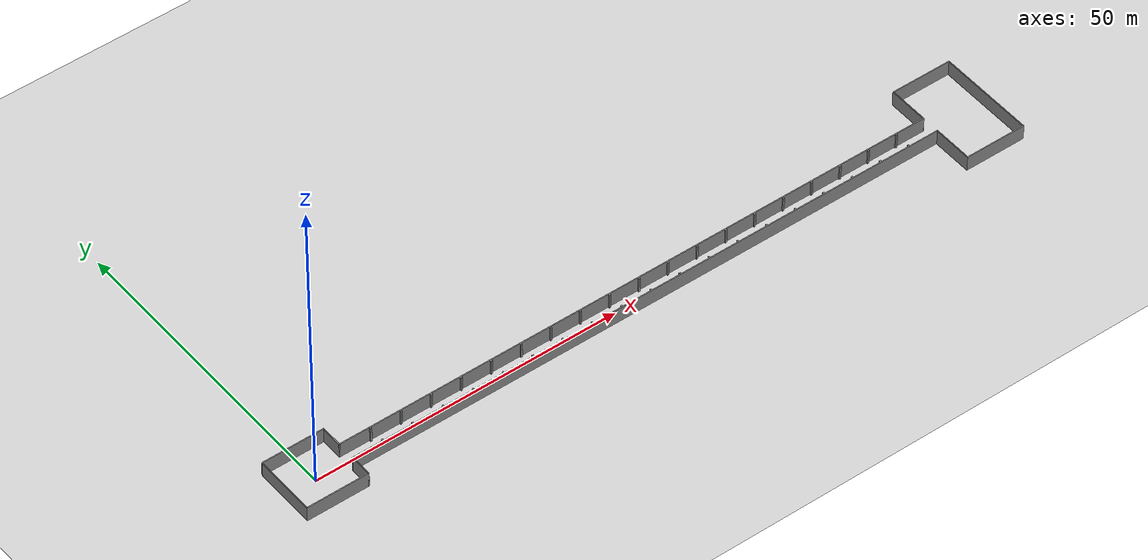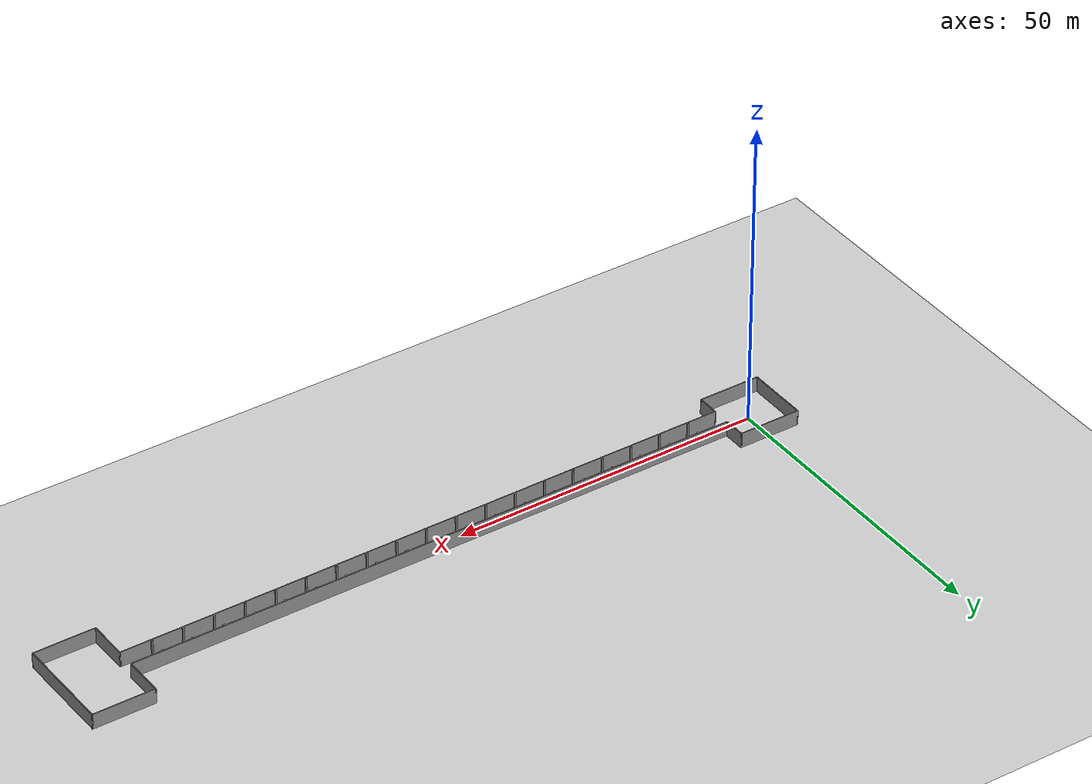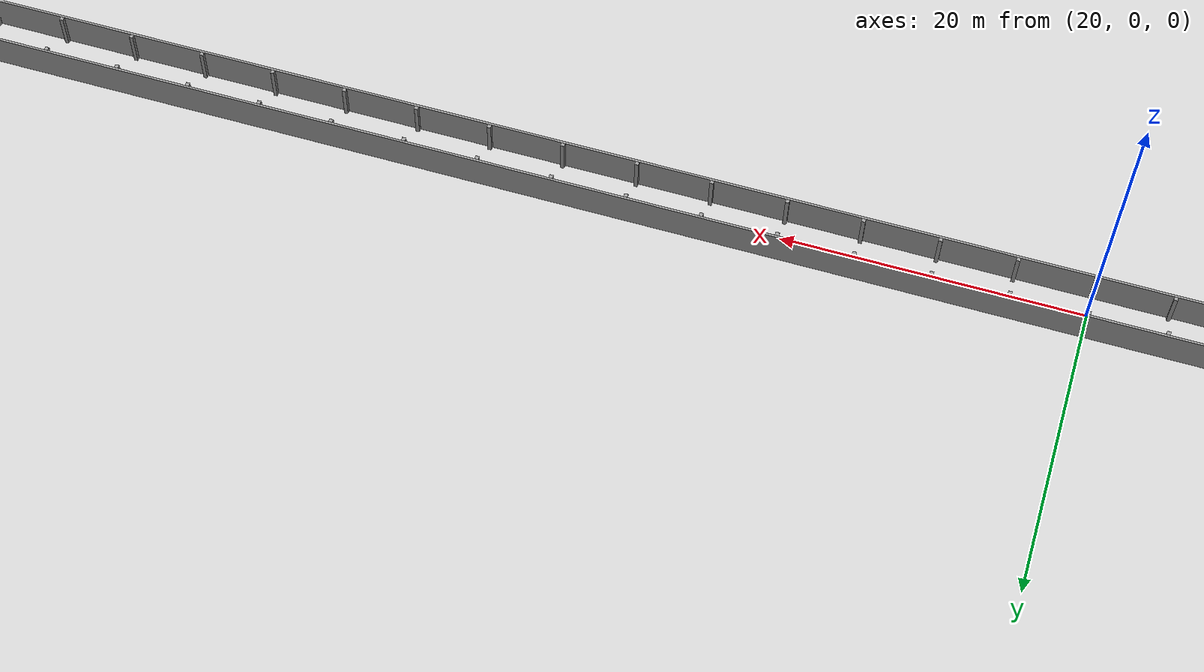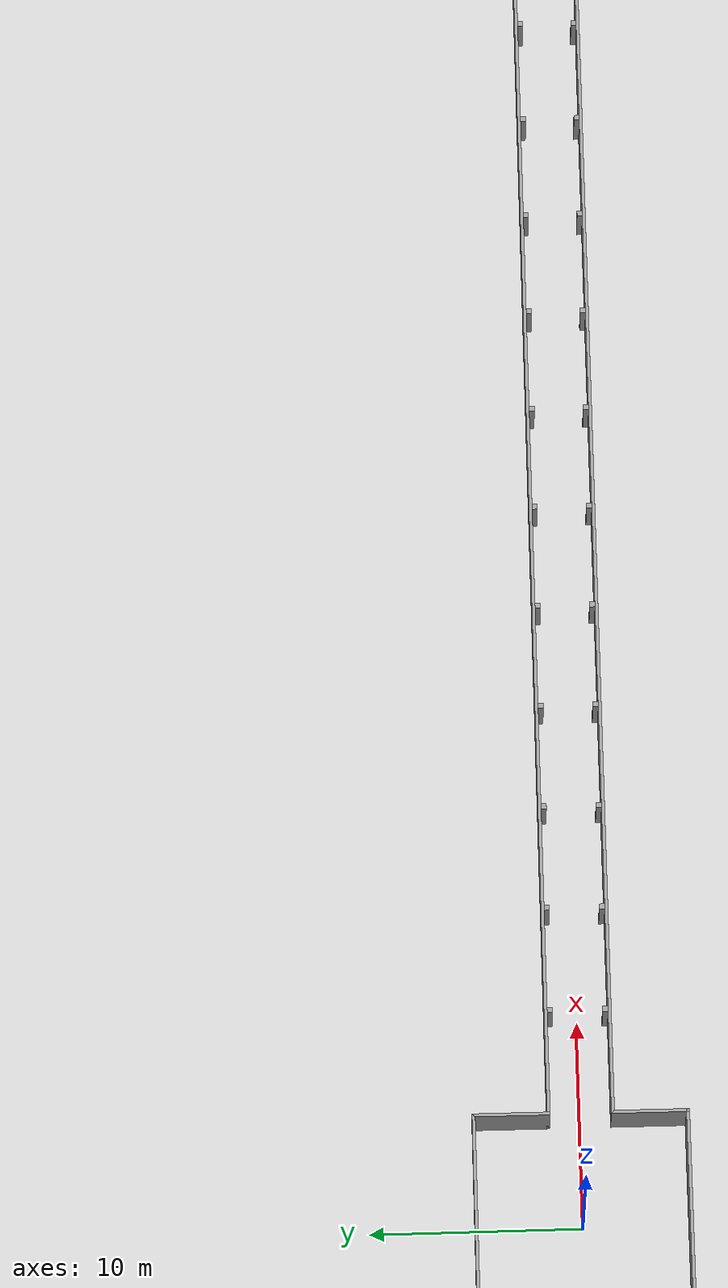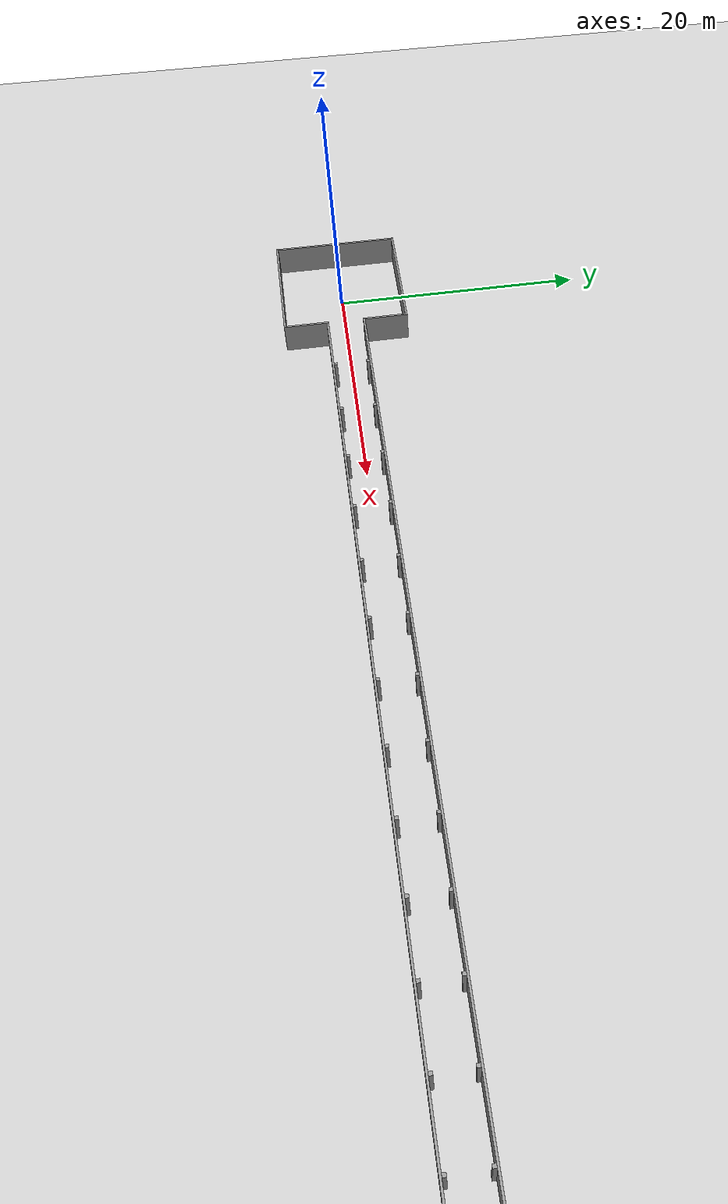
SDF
<sdf version="1.6">
 <world name="default">
  <light name="sun" type="directional">
   <pose>0 0 10 0 -0 0</pose>
   <diffuse>0.8 0.8 0.8 1</diffuse>
   <specular>0.2 0.2 0.2 1</specular>
   <attenuation>
    <range>1000</range>
    <constant>0.9</constant>
    <linear>0.01</linear>
    <quadratic>0.001</quadratic>
   </attenuation>
   <direction>-0.5 0.1 -0.9</direction>
  </light>
  <model name="ground_plane">
   <static>1</static>
   <link name="link">
    <collision name="collision">
     <geometry><plane><normal>0 0 1</normal><size>300 300</size></plane></geometry>
     <surface><friction><ode><mu>100</mu><mu2>50</mu2></ode></friction></surface>
    </collision>
    <visual name="visual">
     <cast_shadows>0</cast_shadows>
     <geometry><plane><normal>0 0 1</normal><size>300 300</size></plane></geometry>
     <material>
      <script><uri>file://media/materials/scripts/gazebo.material</uri><name>Gazebo/Grey</name></script>
     </material>
    </visual>
   </link>
  </model>
  <gravity>0 0 -9.8</gravity>
  <magnetic_field>6e-06 2.3e-05 -4.2e-05</magnetic_field>
  <atmosphere type="adiabatic"/>
  <physics name="default_physics" default="0" type="ode">
   <max_step_size>0.001</max_step_size>
   <real_time_factor>1</real_time_factor>
   <real_time_update_rate>1000</real_time_update_rate>
  </physics>
  <scene><ambient>0.4 0.4 0.4 1</ambient><background>0.7 0.7 0.7 1</background><shadows>1</shadows></scene>
  <spherical_coordinates>
   <surface_model>EARTH_WGS84</surface_model>
   <latitude_deg>0</latitude_deg>
   <longitude_deg>0</longitude_deg>
   <elevation>0</elevation>
   <heading_deg>0</heading_deg>
  </spherical_coordinates>
  <model name="DynCorridor2">
   <pose>55 0 0 0 -0 0</pose>
   <link name="Wall_0">
    <collision name="Wall_0_Collision">
     <geometry><box><size>10.15 0.15 2.5</size></box></geometry>
     <pose>0 0 1.25 0 -0 0</pose>
    </collision>
    <visual name="Wall_0_Visual">
     <pose>0 0 1.25 0 -0 0</pose>
     <geometry><box><size>10.15 0.15 2.5</size></box></geometry>
     <material>
      <script><uri>file://media/materials/scripts/gazebo.material</uri><name>Gazebo/Grey</name></script>
      <ambient>1 1 1 1</ambient>
     </material>
     <meta><layer>0</layer></meta>
    </visual>
    <pose>-55 5 0 0 -0 0</pose>
   </link>
   <link name="Wall_1">
    <collision name="Wall_1_Collision">
     <geometry><box><size>3.65 0.15 2.5</size></box></geometry>
     <pose>0 0 1.25 0 -0 0</pose>
    </collision>
    <visual name="Wall_1_Visual">
     <pose>0 0 1.25 0 -0 0</pose>
     <geometry><box><size>3.65 0.15 2.5</size></box></geometry>
     <material>
      <script><uri>file://media/materials/scripts/gazebo.material</uri><name>Gazebo/Grey</name></script>
      <ambient>1 1 1 1</ambient>
     </material>
     <meta><layer>0</layer></meta>
    </visual>
    <pose>-50 3.25 0 0 0 -1.5708</pose>
   </link>
   <link name="Wall_11">
    <collision name="Wall_11_Collision">
     <geometry><box><size>0.15 0.15 2.5</size></box></geometry>
     <pose>0 0 1.25 0 -0 0</pose>
    </collision>
    <visual name="Wall_11_Visual">
     <pose>0 0 1.25 0 -0 0</pose>
     <geometry><box><size>0.15 0.15 2.5</size></box></geometry>
     <material>
      <script><uri>file://media/materials/scripts/gazebo.material</uri><name>Gazebo/Grey</name></script>
      <ambient>1 1 1 1</ambient>
     </material>
     <meta><layer>0</layer></meta>
    </visual>
    <pose>-50 -1.5 0 0 -0 0</pose>
   </link>
   <link name="Wall_13">
    <collision name="Wall_13_Collision">
     <geometry><box><size>100.15 0.15 2.5</size></box></geometry>
     <pose>0 0 1.25 0 -0 0</pose>
    </collision>
    <visual name="Wall_13_Visual">
     <pose>0 0 1.25 0 -0 0</pose>
     <geometry><box><size>100.15 0.15 2.5</size></box></geometry>
     <material>
      <script><uri>file://media/materials/scripts/gazebo.material</uri><name>Gazebo/Grey</name></script>
      <ambient>1 1 1 1</ambient>
     </material>
     <meta><layer>0</layer></meta>
    </visual>
    <pose>-2e-06 -1.5 0 0 -0 0</pose>
   </link>
   <link name="Wall_18">
    <collision name="Wall_18_Collision">
     <geometry><box><size>6.65 0.15 2.5</size></box></geometry>
     <pose>0 0 1.25 0 -0 0</pose>
    </collision>
    <visual name="Wall_18_Visual">
     <pose>0 0 1.25 0 -0 0</pose>
     <geometry><box><size>6.65 0.15 2.5</size></box></geometry>
     <material>
      <script><uri>file://media/materials/scripts/gazebo.material</uri><name>Gazebo/Grey</name></script>
      <ambient>1 1 1 1</ambient>
     </material>
     <meta><layer>0</layer></meta>
    </visual>
    <pose>50 4.75 0 0 -0 1.5708</pose>
   </link>
   <link name="Wall_20">
    <collision name="Wall_20_Collision">
     <geometry><box><size>6.65 0.15 2.5</size></box></geometry>
     <pose>0 0 1.25 0 -0 0</pose>
    </collision>
    <visual name="Wall_20_Visual">
     <pose>0 0 1.25 0 -0 0</pose>
     <geometry><box><size>6.65 0.15 2.5</size></box></geometry>
     <material>
      <script><uri>file://media/materials/scripts/gazebo.material</uri><name>Gazebo/Grey</name></script>
      <ambient>1 1 1 1</ambient>
     </material>
     <meta><layer>0</layer></meta>
    </visual>
    <pose>50 -4.75 0 0 0 -1.5708</pose>
   </link>
   <link name="Wall_22">
    <collision name="Wall_22_Collision">
     <geometry><box><size>10.15 0.15 2.5</size></box></geometry>
     <pose>0 0 1.25 0 -0 0</pose>
    </collision>
    <visual name="Wall_22_Visual">
     <pose>0 0 1.25 0 -0 0</pose>
     <geometry><box><size>10.15 0.15 2.5</size></box></geometry>
     <material>
      <script><uri>file://media/materials/scripts/gazebo.material</uri><name>Gazebo/Grey</name></script>
      <ambient>1 1 1 1</ambient>
     </material>
     <meta><layer>0</layer></meta>
    </visual>
    <pose>55 8 0 0 -0 0</pose>
   </link>
   <link name="Wall_24">
    <collision name="Wall_24_Collision">
     <geometry><box><size>10.15 0.15 2.5</size></box></geometry>
     <pose>0 0 1.25 0 -0 0</pose>
    </collision>
    <visual name="Wall_24_Visual">
     <pose>0 0 1.25 0 -0 0</pose>
     <geometry><box><size>10.15 0.15 2.5</size></box></geometry>
     <material>
      <script><uri>file://media/materials/scripts/gazebo.material</uri><name>Gazebo/Grey</name></script>
      <ambient>1 1 1 1</ambient>
     </material>
     <meta><layer>0</layer></meta>
    </visual>
    <pose>55 -8 0 0 -0 0</pose>
   </link>
   <link name="Wall_26">
    <collision name="Wall_26_Collision">
     <geometry><box><size>16.15 0.15 2.5</size></box></geometry>
     <pose>0 0 1.25 0 -0 0</pose>
    </collision>
    <visual name="Wall_26_Visual">
     <pose>0 0 1.25 0 -0 0</pose>
     <geometry><box><size>16.15 0.15 2.5</size></box></geometry>
     <material>
      <script><uri>file://media/materials/scripts/gazebo.material</uri><name>Gazebo/Grey</name></script>
      <ambient>1 1 1 1</ambient>
     </material>
     <meta><layer>0</layer></meta>
    </visual>
    <pose>60 0 0 0 -0 1.5708</pose>
   </link>
   <link name="Wall_3">
    <collision name="Wall_3_Collision">
     <geometry><box><size>10.15 0.15 2.5</size></box></geometry>
     <pose>0 0 1.25 0 -0 0</pose>
    </collision>
    <visual name="Wall_3_Visual">
     <pose>0 0 1.25 0 -0 0</pose>
     <geometry><box><size>10.15 0.15 2.5</size></box></geometry>
     <material>
      <script><uri>file://media/materials/scripts/gazebo.material</uri><name>Gazebo/Grey</name></script>
      <ambient>1 1 1 1</ambient>
     </material>
     <meta><layer>0</layer></meta>
    </visual>
    <pose>-60 0 0 0 0 -1.5708</pose>
   </link>
   <link name="Wall_4">
    <collision name="Wall_4_Collision">
     <geometry><box><size>10.15 0.15 2.5</size></box></geometry>
     <pose>0 0 1.25 0 -0 0</pose>
    </collision>
    <visual name="Wall_4_Visual">
     <pose>0 0 1.25 0 -0 0</pose>
     <geometry><box><size>10.15 0.15 2.5</size></box></geometry>
     <material>
      <script><uri>file://media/materials/scripts/gazebo.material</uri><name>Gazebo/Grey</name></script>
      <ambient>1 1 1 1</ambient>
     </material>
     <meta><layer>0</layer></meta>
    </visual>
    <pose>-55 -5 0 0 -0 0</pose>
   </link>
   <link name="Wall_7">
    <collision name="Wall_7_Collision">
     <geometry><box><size>3.65 0.15 2.5</size></box></geometry>
     <pose>0 0 1.25 0 -0 0</pose>
    </collision>
    <visual name="Wall_7_Visual">
     <pose>0 0 1.25 0 -0 0</pose>
     <geometry><box><size>3.65 0.15 2.5</size></box></geometry>
     <material>
      <script><uri>file://media/materials/scripts/gazebo.material</uri><name>Gazebo/Grey</name></script>
      <ambient>1 1 1 1</ambient>
     </material>
     <meta><layer>0</layer></meta>
    </visual>
    <pose>-50 -3.25 0 0 -0 1.5708</pose>
   </link>
   <link name="Wall_9">
    <collision name="Wall_9_Collision">
     <geometry><box><size>100.15 0.15 2.5</size></box></geometry>
     <pose>0 0 1.25 0 -0 0</pose>
    </collision>
    <visual name="Wall_9_Visual">
     <pose>0 0 1.25 0 -0 0</pose>
     <geometry><box><size>100.15 0.15 2.5</size></box></geometry>
     <material>
      <script><uri>file://media/materials/scripts/gazebo.material</uri><name>Gazebo/Grey</name></script>
      <ambient>1 1 1 1</ambient>
     </material>
     <meta><layer>0</layer></meta>
    </visual>
    <pose>-2e-06 1.5 0 0 -0 0</pose>
   </link>
   <link name="Wall_50l">
    <collision name="Wall_50_Collision">
     <geometry><box><size>0.25 0.25 2.5</size></box></geometry>
     <pose>0 0 1.25 0 -0 0</pose>
    </collision>
    <visual name="Wall_50_Visual">
     <pose>0 0 1.25 0 -0 0</pose>
     <geometry><box><size>0.25 0.25 2.5</size></box></geometry>
     <material>
      <script><uri>file://media/materials/scripts/gazebo.material</uri><name>Gazebo/Grey</name></script>
      <ambient>1 1 1 1</ambient>
     </material>
     <meta><layer>0</layer></meta>
    </visual>
    <pose>0 1.3 0 0 -0 0</pose>
   </link>
   <link name="Wall_50r">
    <collision name="Wall_50_Collision">
     <geometry><box><size>0.25 0.25 2.5</size></box></geometry>
     <pose>0 0 1.25 0 -0 0</pose>
    </collision>
    <visual name="Wall_50_Visual">
     <pose>0 0 1.25 0 -0 0</pose>
     <geometry><box><size>0.25 0.25 2.5</size></box></geometry>
     <material>
      <script><uri>file://media/materials/scripts/gazebo.material</uri><name>Gazebo/Grey</name></script>
      <ambient>1 1 1 1</ambient>
     </material>
     <meta><layer>0</layer></meta>
    </visual>
    <pose>0 -1.3 0 0 -0 0</pose>
   </link>
   <link name="Wall_51l">
    <collision name="Wall_51_Collision">
     <geometry><box><size>0.25 0.25 2.5</size></box></geometry>
     <pose>0 0 1.25 0 -0 0</pose>
    </collision>
    <visual name="Wall_51_Visual">
     <pose>0 0 1.25 0 -0 0</pose>
     <geometry><box><size>0.25 0.25 2.5</size></box></geometry>
     <material>
      <script><uri>file://media/materials/scripts/gazebo.material</uri><name>Gazebo/Grey</name></script>
      <ambient>1 1 1 1</ambient>
     </material>
     <meta><layer>0</layer></meta>
    </visual>
    <pose>5 1.3 0 0 -0 0</pose>
   </link>
   <link name="Wall_51r">
    <collision name="Wall_51_Collision">
     <geometry><box><size>0.25 0.25 2.5</size></box></geometry>
     <pose>0 0 1.25 0 -0 0</pose>
    </collision>
    <visual name="Wall_51_Visual">
     <pose>0 0 1.25 0 -0 0</pose>
     <geometry><box><size>0.25 0.25 2.5</size></box></geometry>
     <material>
      <script><uri>file://media/materials/scripts/gazebo.material</uri><name>Gazebo/Grey</name></script>
      <ambient>1 1 1 1</ambient>
     </material>
     <meta><layer>0</layer></meta>
    </visual>
    <pose>5 -1.3 0 0 -0 0</pose>
   </link>
   <link name="Wall_52l">
    <collision name="Wall_52_Collision">
     <geometry><box><size>0.25 0.25 2.5</size></box></geometry>
     <pose>0 0 1.25 0 -0 0</pose>
    </collision>
    <visual name="Wall_52_Visual">
     <pose>0 0 1.25 0 -0 0</pose>
     <geometry><box><size>0.25 0.25 2.5</size></box></geometry>
     <material>
      <script><uri>file://media/materials/scripts/gazebo.material</uri><name>Gazebo/Grey</name></script>
      <ambient>1 1 1 1</ambient>
     </material>
     <meta><layer>0</layer></meta>
    </visual>
    <pose>10 1.3 0 0 -0 0</pose>
   </link>
   <link name="Wall_52r">
    <collision name="Wall_52_Collision">
     <geometry><box><size>0.25 0.25 2.5</size></box></geometry>
     <pose>0 0 1.25 0 -0 0</pose>
    </collision>
    <visual name="Wall_52_Visual">
     <pose>0 0 1.25 0 -0 0</pose>
     <geometry><box><size>0.25 0.25 2.5</size></box></geometry>
     <material>
      <script><uri>file://media/materials/scripts/gazebo.material</uri><name>Gazebo/Grey</name></script>
      <ambient>1 1 1 1</ambient>
     </material>
     <meta><layer>0</layer></meta>
    </visual>
    <pose>10 -1.3 0 0 -0 0</pose>
   </link>
   <link name="Wall_53l">
    <collision name="Wall_53_Collision">
     <geometry><box><size>0.25 0.25 2.5</size></box></geometry>
     <pose>0 0 1.25 0 -0 0</pose>
    </collision>
    <visual name="Wall_53_Visual">
     <pose>0 0 1.25 0 -0 0</pose>
     <geometry><box><size>0.25 0.25 2.5</size></box></geometry>
     <material>
      <script><uri>file://media/materials/scripts/gazebo.material</uri><name>Gazebo/Grey</name></script>
      <ambient>1 1 1 1</ambient>
     </material>
     <meta><layer>0</layer></meta>
    </visual>
    <pose>15 1.3 0 0 -0 0</pose>
   </link>
   <link name="Wall_53r">
    <collision name="Wall_53_Collision">
     <geometry><box><size>0.25 0.25 2.5</size></box></geometry>
     <pose>0 0 1.25 0 -0 0</pose>
    </collision>
    <visual name="Wall_53_Visual">
     <pose>0 0 1.25 0 -0 0</pose>
     <geometry><box><size>0.25 0.25 2.5</size></box></geometry>
     <material>
      <script><uri>file://media/materials/scripts/gazebo.material</uri><name>Gazebo/Grey</name></script>
      <ambient>1 1 1 1</ambient>
     </material>
     <meta><layer>0</layer></meta>
    </visual>
    <pose>15 -1.3 0 0 -0 0</pose>
   </link>
   <link name="Wall_54l">
    <collision name="Wall_54_Collision">
     <geometry><box><size>0.25 0.25 2.5</size></box></geometry>
     <pose>0 0 1.25 0 -0 0</pose>
    </collision>
    <visual name="Wall_54_Visual">
     <pose>0 0 1.25 0 -0 0</pose>
     <geometry><box><size>0.25 0.25 2.5</size></box></geometry>
     <material>
      <script><uri>file://media/materials/scripts/gazebo.material</uri><name>Gazebo/Grey</name></script>
      <ambient>1 1 1 1</ambient>
     </material>
     <meta><layer>0</layer></meta>
    </visual>
    <pose>20 1.3 0 0 -0 0</pose>
   </link>
   <link name="Wall_54r">
    <collision name="Wall_54_Collision">
     <geometry><box><size>0.25 0.25 2.5</size></box></geometry>
     <pose>0 0 1.25 0 -0 0</pose>
    </collision>
    <visual name="Wall_54_Visual">
     <pose>0 0 1.25 0 -0 0</pose>
     <geometry><box><size>0.25 0.25 2.5</size></box></geometry>
     <material>
      <script><uri>file://media/materials/scripts/gazebo.material</uri><name>Gazebo/Grey</name></script>
      <ambient>1 1 1 1</ambient>
     </material>
     <meta><layer>0</layer></meta>
    </visual>
    <pose>20 -1.3 0 0 -0 0</pose>
   </link>
   <link name="Wall_55l">
    <collision name="Wall_55_Collision">
     <geometry><box><size>0.25 0.25 2.5</size></box></geometry>
     <pose>0 0 1.25 0 -0 0</pose>
    </collision>
    <visual name="Wall_55_Visual">
     <pose>0 0 1.25 0 -0 0</pose>
     <geometry><box><size>0.25 0.25 2.5</size></box></geometry>
     <material>
      <script><uri>file://media/materials/scripts/gazebo.material</uri><name>Gazebo/Grey</name></script>
      <ambient>1 1 1 1</ambient>
     </material>
     <meta><layer>0</layer></meta>
    </visual>
    <pose>25 1.3 0 0 -0 0</pose>
   </link>
   <link name="Wall_55r">
    <collision name="Wall_55_Collision">
     <geometry><box><size>0.25 0.25 2.5</size></box></geometry>
     <pose>0 0 1.25 0 -0 0</pose>
    </collision>
    <visual name="Wall_55_Visual">
     <pose>0 0 1.25 0 -0 0</pose>
     <geometry><box><size>0.25 0.25 2.5</size></box></geometry>
     <material>
      <script><uri>file://media/materials/scripts/gazebo.material</uri><name>Gazebo/Grey</name></script>
      <ambient>1 1 1 1</ambient>
     </material>
     <meta><layer>0</layer></meta>
    </visual>
    <pose>25 -1.3 0 0 -0 0</pose>
   </link>
   <link name="Wall_56l">
    <collision name="Wall_56_Collision">
     <geometry><box><size>0.25 0.25 2.5</size></box></geometry>
     <pose>0 0 1.25 0 -0 0</pose>
    </collision>
    <visual name="Wall_56_Visual">
     <pose>0 0 1.25 0 -0 0</pose>
     <geometry><box><size>0.25 0.25 2.5</size></box></geometry>
     <material>
      <script><uri>file://media/materials/scripts/gazebo.material</uri><name>Gazebo/Grey</name></script>
      <ambient>1 1 1 1</ambient>
     </material>
     <meta><layer>0</layer></meta>
    </visual>
    <pose>30 1.3 0 0 -0 0</pose>
   </link>
   <link name="Wall_56r">
    <collision name="Wall_56_Collision">
     <geometry><box><size>0.25 0.25 2.5</size></box></geometry>
     <pose>0 0 1.25 0 -0 0</pose>
    </collision>
    <visual name="Wall_56_Visual">
     <pose>0 0 1.25 0 -0 0</pose>
     <geometry><box><size>0.25 0.25 2.5</size></box></geometry>
     <material>
      <script><uri>file://media/materials/scripts/gazebo.material</uri><name>Gazebo/Grey</name></script>
      <ambient>1 1 1 1</ambient>
     </material>
     <meta><layer>0</layer></meta>
    </visual>
    <pose>30 -1.3 0 0 -0 0</pose>
   </link>
   <link name="Wall_57l">
    <collision name="Wall_57_Collision">
     <geometry><box><size>0.25 0.25 2.5</size></box></geometry>
     <pose>0 0 1.25 0 -0 0</pose>
    </collision>
    <visual name="Wall_57_Visual">
     <pose>0 0 1.25 0 -0 0</pose>
     <geometry><box><size>0.25 0.25 2.5</size></box></geometry>
     <material>
      <script><uri>file://media/materials/scripts/gazebo.material</uri><name>Gazebo/Grey</name></script>
      <ambient>1 1 1 1</ambient>
     </material>
     <meta><layer>0</layer></meta>
    </visual>
    <pose>35 1.3 0 0 -0 0</pose>
   </link>
   <link name="Wall_57r">
    <collision name="Wall_57_Collision">
     <geometry><box><size>0.25 0.25 2.5</size></box></geometry>
     <pose>0 0 1.25 0 -0 0</pose>
    </collision>
    <visual name="Wall_57_Visual">
     <pose>0 0 1.25 0 -0 0</pose>
     <geometry><box><size>0.25 0.25 2.5</size></box></geometry>
     <material>
      <script><uri>file://media/materials/scripts/gazebo.material</uri><name>Gazebo/Grey</name></script>
      <ambient>1 1 1 1</ambient>
     </material>
     <meta><layer>0</layer></meta>
    </visual>
    <pose>35 -1.3 0 0 -0 0</pose>
   </link>
   <link name="Wall_58l">
    <collision name="Wall_58_Collision">
     <geometry><box><size>0.25 0.25 2.5</size></box></geometry>
     <pose>0 0 1.25 0 -0 0</pose>
    </collision>
    <visual name="Wall_58_Visual">
     <pose>0 0 1.25 0 -0 0</pose>
     <geometry><box><size>0.25 0.25 2.5</size></box></geometry>
     <material>
      <script><uri>file://media/materials/scripts/gazebo.material</uri><name>Gazebo/Grey</name></script>
      <ambient>1 1 1 1</ambient>
     </material>
     <meta><layer>0</layer></meta>
    </visual>
    <pose>40 1.3 0 0 -0 0</pose>
   </link>
   <link name="Wall_58r">
    <collision name="Wall_58_Collision">
     <geometry><box><size>0.25 0.25 2.5</size></box></geometry>
     <pose>0 0 1.25 0 -0 0</pose>
    </collision>
    <visual name="Wall_58_Visual">
     <pose>0 0 1.25 0 -0 0</pose>
     <geometry><box><size>0.25 0.25 2.5</size></box></geometry>
     <material>
      <script><uri>file://media/materials/scripts/gazebo.material</uri><name>Gazebo/Grey</name></script>
      <ambient>1 1 1 1</ambient>
     </material>
     <meta><layer>0</layer></meta>
    </visual>
    <pose>40 -1.3 0 0 -0 0</pose>
   </link>
   <link name="Wall_59l">
    <collision name="Wall_59_Collision">
     <geometry><box><size>0.25 0.25 2.5</size></box></geometry>
     <pose>0 0 1.25 0 -0 0</pose>
    </collision>
    <visual name="Wall_59_Visual">
     <pose>0 0 1.25 0 -0 0</pose>
     <geometry><box><size>0.25 0.25 2.5</size></box></geometry>
     <material>
      <script><uri>file://media/materials/scripts/gazebo.material</uri><name>Gazebo/Grey</name></script>
      <ambient>1 1 1 1</ambient>
     </material>
     <meta><layer>0</layer></meta>
    </visual>
    <pose>45 1.3 0 0 -0 0</pose>
   </link>
   <link name="Wall_59r">
    <collision name="Wall_59_Collision">
     <geometry><box><size>0.25 0.25 2.5</size></box></geometry>
     <pose>0 0 1.25 0 -0 0</pose>
    </collision>
    <visual name="Wall_59_Visual">
     <pose>0 0 1.25 0 -0 0</pose>
     <geometry><box><size>0.25 0.25 2.5</size></box></geometry>
     <material>
      <script><uri>file://media/materials/scripts/gazebo.material</uri><name>Gazebo/Grey</name></script>
      <ambient>1 1 1 1</ambient>
     </material>
     <meta><layer>0</layer></meta>
    </visual>
    <pose>45 -1.3 0 0 -0 0</pose>
   </link>
   <link name="Wall_neg_51l">
    <collision name="Wall_neg_51_Collision">
     <geometry><box><size>0.25 0.25 2.5</size></box></geometry>
     <pose>0 0 1.25 0 -0 0</pose>
    </collision>
    <visual name="Wall_neg_51_Visual">
     <pose>0 0 1.25 0 -0 0</pose>
     <geometry><box><size>0.25 0.25 2.5</size></box></geometry>
     <material>
      <script><uri>file://media/materials/scripts/gazebo.material</uri><name>Gazebo/Grey</name></script>
      <ambient>1 1 1 1</ambient>
     </material>
     <meta><layer>0</layer></meta>
    </visual>
    <pose>-5 1.3 0 0 -0 0</pose>
   </link>
   <link name="Wall_neg_51r">
    <collision name="Wall_neg_51_Collision">
     <geometry><box><size>0.25 0.25 2.5</size></box></geometry>
     <pose>0 0 1.25 0 -0 0</pose>
    </collision>
    <visual name="Wall_neg_51_Visual">
     <pose>0 0 1.25 0 -0 0</pose>
     <geometry><box><size>0.25 0.25 2.5</size></box></geometry>
     <material>
      <script><uri>file://media/materials/scripts/gazebo.material</uri><name>Gazebo/Grey</name></script>
      <ambient>1 1 1 1</ambient>
     </material>
     <meta><layer>0</layer></meta>
    </visual>
    <pose>-5 -1.3 0 0 -0 0</pose>
   </link>
   <link name="Wall_neg_52l">
    <collision name="Wall_neg_52_Collision">
     <geometry><box><size>0.25 0.25 2.5</size></box></geometry>
     <pose>0 0 1.25 0 -0 0</pose>
    </collision>
    <visual name="Wall_neg_52_Visual">
     <pose>0 0 1.25 0 -0 0</pose>
     <geometry><box><size>0.25 0.25 2.5</size></box></geometry>
     <material>
      <script><uri>file://media/materials/scripts/gazebo.material</uri><name>Gazebo/Grey</name></script>
      <ambient>1 1 1 1</ambient>
     </material>
     <meta><layer>0</layer></meta>
    </visual>
    <pose>-10 1.3 0 0 -0 0</pose>
   </link>
   <link name="Wall_neg_52r">
    <collision name="Wall_neg_52_Collision">
     <geometry><box><size>0.25 0.25 2.5</size></box></geometry>
     <pose>0 0 1.25 0 -0 0</pose>
    </collision>
    <visual name="Wall_neg_52_Visual">
     <pose>0 0 1.25 0 -0 0</pose>
     <geometry><box><size>0.25 0.25 2.5</size></box></geometry>
     <material>
      <script><uri>file://media/materials/scripts/gazebo.material</uri><name>Gazebo/Grey</name></script>
      <ambient>1 1 1 1</ambient>
     </material>
     <meta><layer>0</layer></meta>
    </visual>
    <pose>-10 -1.3 0 0 -0 0</pose>
   </link>
   <link name="Wall_neg_53l">
    <collision name="Wall_neg_53_Collision">
     <geometry><box><size>0.25 0.25 2.5</size></box></geometry>
     <pose>0 0 1.25 0 -0 0</pose>
    </collision>
    <visual name="Wall_neg_53_Visual">
     <pose>0 0 1.25 0 -0 0</pose>
     <geometry><box><size>0.25 0.25 2.5</size></box></geometry>
     <material>
      <script><uri>file://media/materials/scripts/gazebo.material</uri><name>Gazebo/Grey</name></script>
      <ambient>1 1 1 1</ambient>
     </material>
     <meta><layer>0</layer></meta>
    </visual>
    <pose>-15 1.3 0 0 -0 0</pose>
   </link>
   <link name="Wall_neg_53r">
    <collision name="Wall_neg_53_Collision">
     <geometry><box><size>0.25 0.25 2.5</size></box></geometry>
     <pose>0 0 1.25 0 -0 0</pose>
    </collision>
    <visual name="Wall_neg_53_Visual">
     <pose>0 0 1.25 0 -0 0</pose>
     <geometry><box><size>0.25 0.25 2.5</size></box></geometry>
     <material>
      <script><uri>file://media/materials/scripts/gazebo.material</uri><name>Gazebo/Grey</name></script>
      <ambient>1 1 1 1</ambient>
     </material>
     <meta><layer>0</layer></meta>
    </visual>
    <pose>-15 -1.3 0 0 -0 0</pose>
   </link>
   <link name="Wall_neg_54l">
    <collision name="Wall_neg_54_Collision">
     <geometry><box><size>0.25 0.25 2.5</size></box></geometry>
     <pose>0 0 1.25 0 -0 0</pose>
    </collision>
    <visual name="Wall_neg_54_Visual">
     <pose>0 0 1.25 0 -0 0</pose>
     <geometry><box><size>0.25 0.25 2.5</size></box></geometry>
     <material>
      <script><uri>file://media/materials/scripts/gazebo.material</uri><name>Gazebo/Grey</name></script>
      <ambient>1 1 1 1</ambient>
     </material>
     <meta><layer>0</layer></meta>
    </visual>
    <pose>-20 1.3 0 0 -0 0</pose>
   </link>
   <link name="Wall_neg_54r">
    <collision name="Wall_neg_54_Collision">
     <geometry><box><size>0.25 0.25 2.5</size></box></geometry>
     <pose>0 0 1.25 0 -0 0</pose>
    </collision>
    <visual name="Wall_neg_54_Visual">
     <pose>0 0 1.25 0 -0 0</pose>
     <geometry><box><size>0.25 0.25 2.5</size></box></geometry>
     <material>
      <script><uri>file://media/materials/scripts/gazebo.material</uri><name>Gazebo/Grey</name></script>
      <ambient>1 1 1 1</ambient>
     </material>
     <meta><layer>0</layer></meta>
    </visual>
    <pose>-20 -1.3 0 0 -0 0</pose>
   </link>
   <link name="Wall_neg_55l">
    <collision name="Wall_neg_55_Collision">
     <geometry><box><size>0.25 0.25 2.5</size></box></geometry>
     <pose>0 0 1.25 0 -0 0</pose>
    </collision>
    <visual name="Wall_neg_55_Visual">
     <pose>0 0 1.25 0 -0 0</pose>
     <geometry><box><size>0.25 0.25 2.5</size></box></geometry>
     <material>
      <script><uri>file://media/materials/scripts/gazebo.material</uri><name>Gazebo/Grey</name></script>
      <ambient>1 1 1 1</ambient>
     </material>
     <meta><layer>0</layer></meta>
    </visual>
    <pose>-25 1.3 0 0 -0 0</pose>
   </link>
   <link name="Wall_neg_55r">
    <collision name="Wall_neg_55_Collision">
     <geometry><box><size>0.25 0.25 2.5</size></box></geometry>
     <pose>0 0 1.25 0 -0 0</pose>
    </collision>
    <visual name="Wall_neg_55_Visual">
     <pose>0 0 1.25 0 -0 0</pose>
     <geometry><box><size>0.25 0.25 2.5</size></box></geometry>
     <material>
      <script><uri>file://media/materials/scripts/gazebo.material</uri><name>Gazebo/Grey</name></script>
      <ambient>1 1 1 1</ambient>
     </material>
     <meta><layer>0</layer></meta>
    </visual>
    <pose>-25 -1.3 0 0 -0 0</pose>
   </link>
   <link name="Wall_neg_56l">
    <collision name="Wall_neg_56_Collision">
     <geometry><box><size>0.25 0.25 2.5</size></box></geometry>
     <pose>0 0 1.25 0 -0 0</pose>
    </collision>
    <visual name="Wall_neg_56_Visual">
     <pose>0 0 1.25 0 -0 0</pose>
     <geometry><box><size>0.25 0.25 2.5</size></box></geometry>
     <material>
      <script><uri>file://media/materials/scripts/gazebo.material</uri><name>Gazebo/Grey</name></script>
      <ambient>1 1 1 1</ambient>
     </material>
     <meta><layer>0</layer></meta>
    </visual>
    <pose>-30 1.3 0 0 -0 0</pose>
   </link>
   <link name="Wall_neg_56r">
    <collision name="Wall_neg_56_Collision">
     <geometry><box><size>0.25 0.25 2.5</size></box></geometry>
     <pose>0 0 1.25 0 -0 0</pose>
    </collision>
    <visual name="Wall_neg_56_Visual">
     <pose>0 0 1.25 0 -0 0</pose>
     <geometry><box><size>0.25 0.25 2.5</size></box></geometry>
     <material>
      <script><uri>file://media/materials/scripts/gazebo.material</uri><name>Gazebo/Grey</name></script>
      <ambient>1 1 1 1</ambient>
     </material>
     <meta><layer>0</layer></meta>
    </visual>
    <pose>-30 -1.3 0 0 -0 0</pose>
   </link>
   <link name="Wall_neg_57l">
    <collision name="Wall_neg_57_Collision">
     <geometry><box><size>0.25 0.25 2.5</size></box></geometry>
     <pose>0 0 1.25 0 -0 0</pose>
    </collision>
    <visual name="Wall_neg_57_Visual">
     <pose>0 0 1.25 0 -0 0</pose>
     <geometry><box><size>0.25 0.25 2.5</size></box></geometry>
     <material>
      <script><uri>file://media/materials/scripts/gazebo.material</uri><name>Gazebo/Grey</name></script>
      <ambient>1 1 1 1</ambient>
     </material>
     <meta><layer>0</layer></meta>
    </visual>
    <pose>-35 1.3 0 0 -0 0</pose>
   </link>
   <link name="Wall_neg_57r">
    <collision name="Wall_neg_57_Collision">
     <geometry><box><size>0.25 0.25 2.5</size></box></geometry>
     <pose>0 0 1.25 0 -0 0</pose>
    </collision>
    <visual name="Wall_neg_57_Visual">
     <pose>0 0 1.25 0 -0 0</pose>
     <geometry><box><size>0.25 0.25 2.5</size></box></geometry>
     <material>
      <script><uri>file://media/materials/scripts/gazebo.material</uri><name>Gazebo/Grey</name></script>
      <ambient>1 1 1 1</ambient>
     </material>
     <meta><layer>0</layer></meta>
    </visual>
    <pose>-35 -1.3 0 0 -0 0</pose>
   </link>
   <link name="Wall_neg_58l">
    <collision name="Wall_neg_58_Collision">
     <geometry><box><size>0.25 0.25 2.5</size></box></geometry>
     <pose>0 0 1.25 0 -0 0</pose>
    </collision>
    <visual name="Wall_neg_58_Visual">
     <pose>0 0 1.25 0 -0 0</pose>
     <geometry><box><size>0.25 0.25 2.5</size></box></geometry>
     <material>
      <script><uri>file://media/materials/scripts/gazebo.material</uri><name>Gazebo/Grey</name></script>
      <ambient>1 1 1 1</ambient>
     </material>
     <meta><layer>0</layer></meta>
    </visual>
    <pose>-40 1.3 0 0 -0 0</pose>
   </link>
   <link name="Wall_neg_58r">
    <collision name="Wall_neg_58_Collision">
     <geometry><box><size>0.25 0.25 2.5</size></box></geometry>
     <pose>0 0 1.25 0 -0 0</pose>
    </collision>
    <visual name="Wall_neg_58_Visual">
     <pose>0 0 1.25 0 -0 0</pose>
     <geometry><box><size>0.25 0.25 2.5</size></box></geometry>
     <material>
      <script><uri>file://media/materials/scripts/gazebo.material</uri><name>Gazebo/Grey</name></script>
      <ambient>1 1 1 1</ambient>
     </material>
     <meta><layer>0</layer></meta>
    </visual>
    <pose>-40 -1.3 0 0 -0 0</pose>
   </link>
   <link name="Wall_neg_59l">
    <collision name="Wall_neg_59_Collision">
     <geometry><box><size>0.25 0.25 2.5</size></box></geometry>
     <pose>0 0 1.25 0 -0 0</pose>
    </collision>
    <visual name="Wall_neg_59_Visual">
     <pose>0 0 1.25 0 -0 0</pose>
     <geometry><box><size>0.25 0.25 2.5</size></box></geometry>
     <material>
      <script><uri>file://media/materials/scripts/gazebo.material</uri><name>Gazebo/Grey</name></script>
      <ambient>1 1 1 1</ambient>
     </material>
     <meta><layer>0</layer></meta>
    </visual>
    <pose>-45 1.3 0 0 -0 0</pose>
   </link>
   <link name="Wall_neg_59r">
    <collision name="Wall_neg_59_Collision">
     <geometry><box><size>0.25 0.25 2.5</size></box></geometry>
     <pose>0 0 1.25 0 -0 0</pose>
    </collision>
    <visual name="Wall_neg_59_Visual">
     <pose>0 0 1.25 0 -0 0</pose>
     <geometry><box><size>0.25 0.25 2.5</size></box></geometry>
     <material>
      <script><uri>file://media/materials/scripts/gazebo.material</uri><name>Gazebo/Grey</name></script>
      <ambient>1 1 1 1</ambient>
     </material>
     <meta><layer>0</layer></meta>
    </visual>
    <pose>-45 -1.3 0 0 -0 0</pose>
   </link>
   <static>1</static>
  </model>
 </world>
</sdf>
